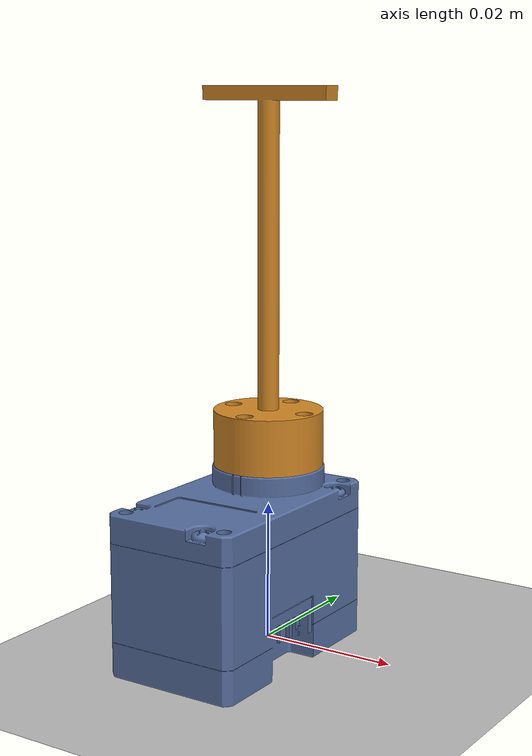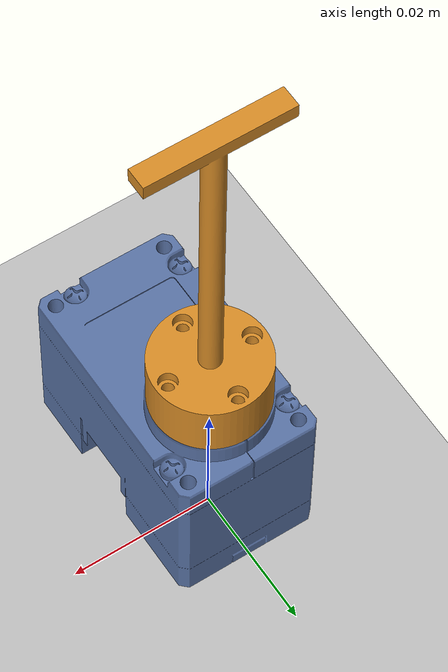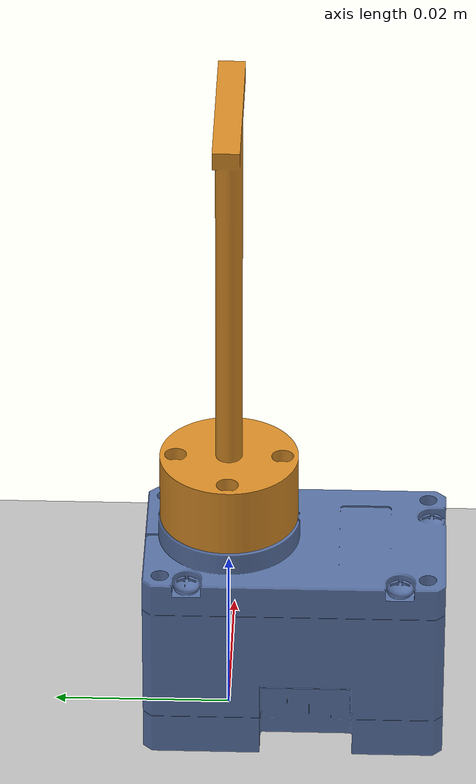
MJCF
<mujoco model="motor_shaft">

  <!--
    This is the root tag and the opening tag of the entire file. We can name it anything, and it will appear in the viewer title bar. It has no effect on the physics.
  -->

  <compiler meshdir="." />  <!-- This tells MuJoCo where to look for mesh/stl files. The dot (.) means "the same folder as this XML file". If we move to a different subfolder (meshes), we'd write meshdir="meshes" instead-->

  <option gravity="0 0 -9.81" timestep="0.002"/> <!-- This sets the gravity and simulation timestep. 0.002 seconds = 2 milliseconds per step, meaning the simulation runs at 500 Hz -->

  <asset> <!-- This section defines the assets (meshes, textures, etc.) used in the simulation -->
    <mesh name="motor_mesh" file="motor.stl" scale="0.001 0.001 0.001"/> <!-- MuJoCo works in meters-->
    <mesh name="shaft_mesh" file="shaft.stl"  scale="0.001 0.001 0.001"/>
  </asset>

  <default>
    <geom condim="3" friction="0.8 0.1 0.1" contype="1" conaffinity="1"/> <!-- contact dmensionality. value 3 means full 3D friction. 3 friction co-efficients: sliding friction (0.8), torsional friction (0.1), and rolling friction (0.1) -->
    <joint damping="0.01" armature="0.01"/>
  </default>

  <worldbody>

    <geom name="floor" type="plane" size="3 3 0.1" rgba="0.75 0.75 0.75 1"/>

    <light name="top_light"  pos="0 0 3"   dir="0 0 -1"   diffuse="0.8 0.8 0.8" specular="0.3 0.3 0.3" directional="true"/>
    <light name="side_light" pos="2 2 2"   dir="-1 -1 -1" diffuse="0.5 0.5 0.5" directional="true"/>

    <body name="motor" pos="0 0 0.0195">

      <geom name="motor_geom"
            type="mesh"
            mesh="motor_mesh"
            rgba="0.35 0.45 0.65 1"
            mass="0.5"
            contype="0"
            conaffinity="0"/>

      <body name="shaft" pos="0 0 0.0065">

        <joint name="shaft_joint"
               type="hinge"
               axis="0 0 1"
               pos="0 0 0"
               limited="false"
               damping="0.01"
               armature="0.01"/>

        <geom name="shaft_geom"
              type="mesh"
              mesh="shaft_mesh"
              rgba="0.85 0.55 0.15 1"
              mass="0.05"
              contype="0"
              conaffinity="0"/>

      </body>

    </body>

  </worldbody>

  <!--
  The actuator section defines what can be controlled. Without this, there is no way to drive the joint — it would just be a free-spinning passive hinge
  -->
  <actuator>
    <motor name="shaft_motor"
           joint="shaft_joint"
           gear="0.5"
           ctrllimited="true"
           ctrlrange="-3 3"/>
  </actuator>

  <!-- Sensors record data from the simulation. They have no effect on physics — they are read-only.-->

  <sensor>
    <jointpos name="shaft_angle"    joint="shaft_joint"/>
    <jointvel name="shaft_velocity" joint="shaft_joint"/>
  </sensor>

</mujoco>
